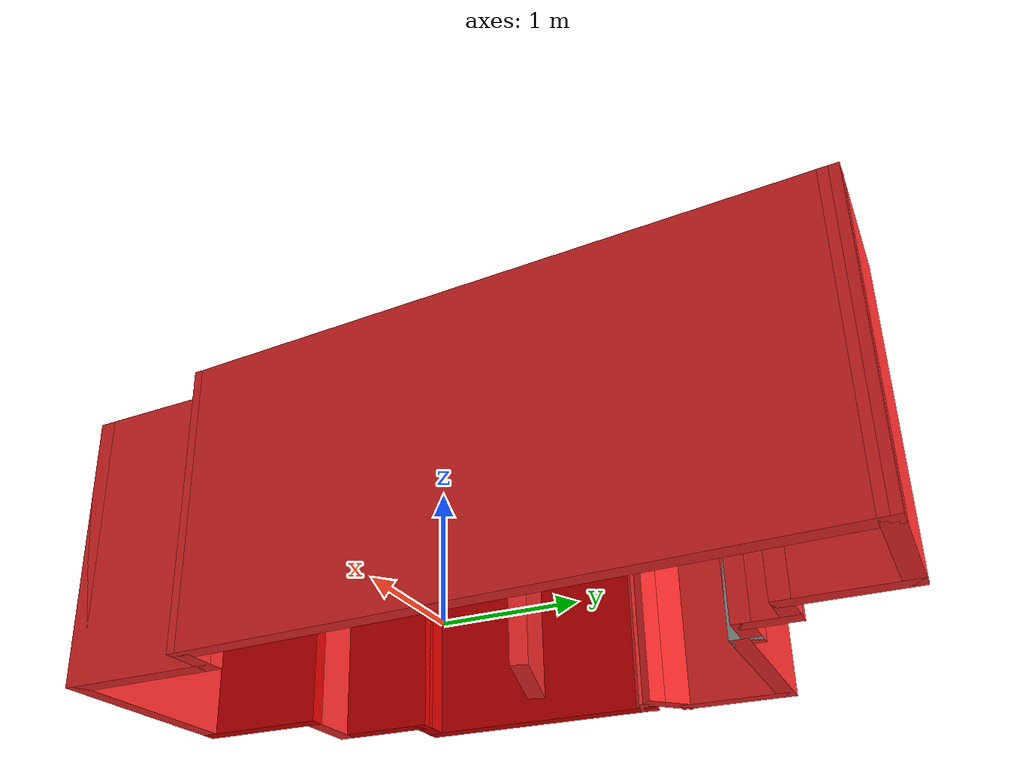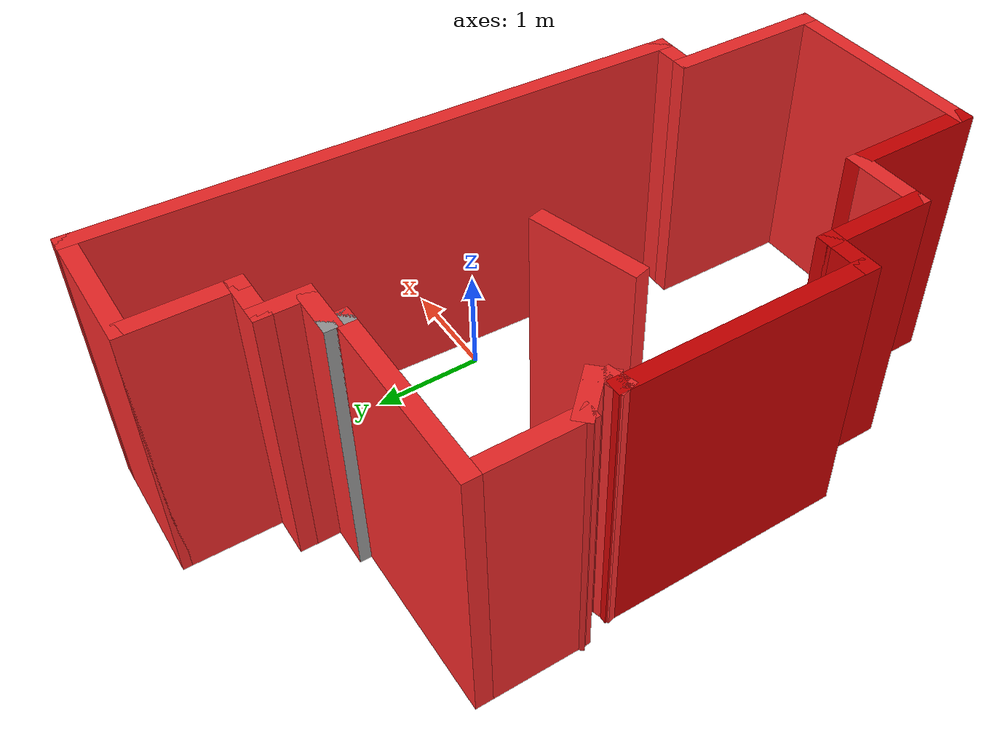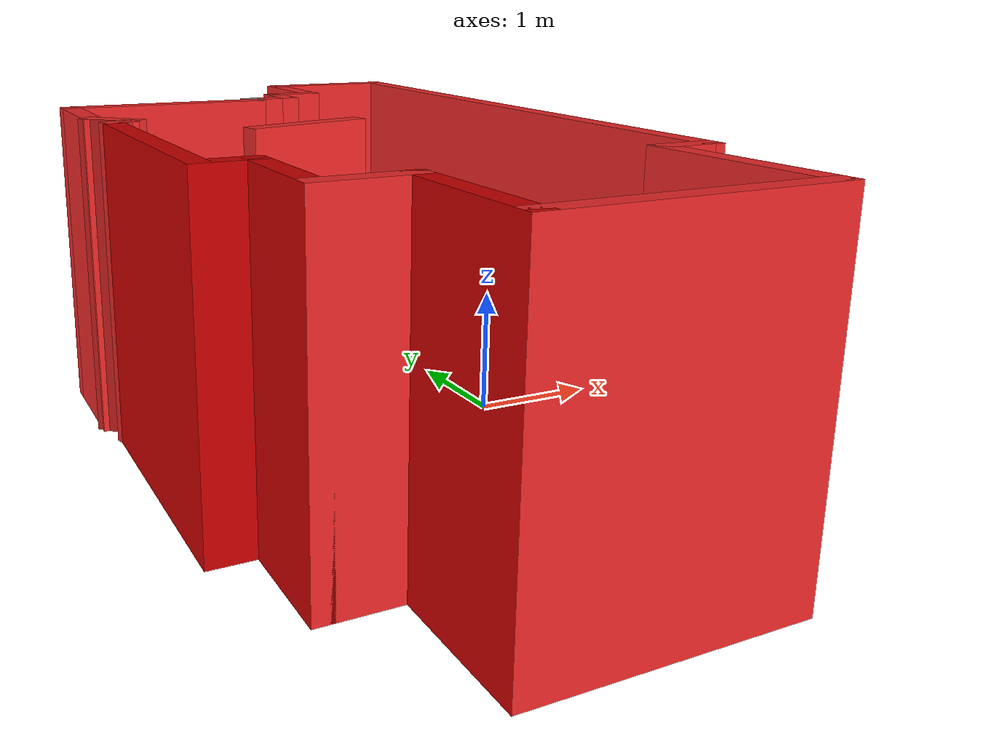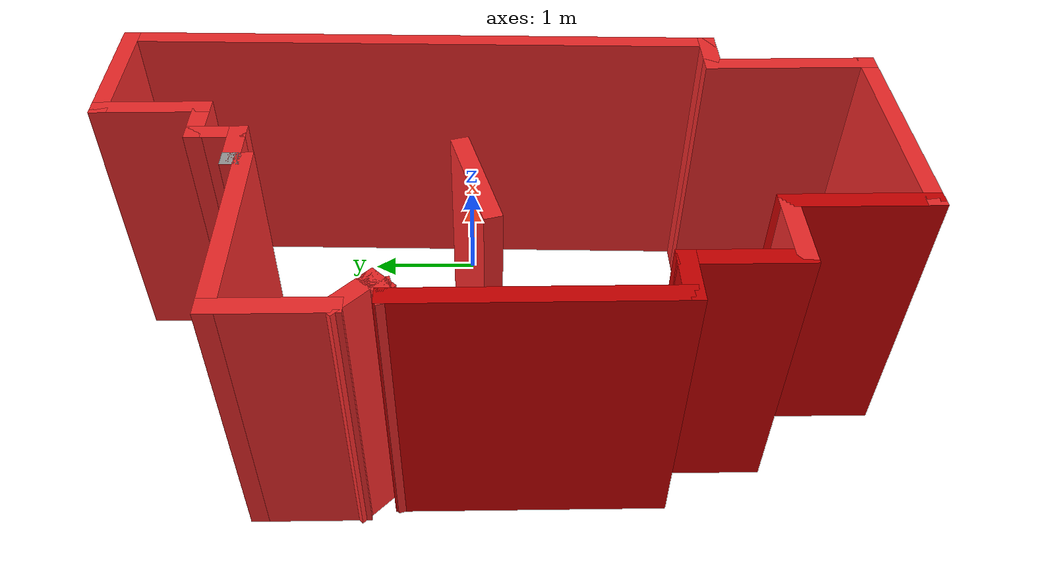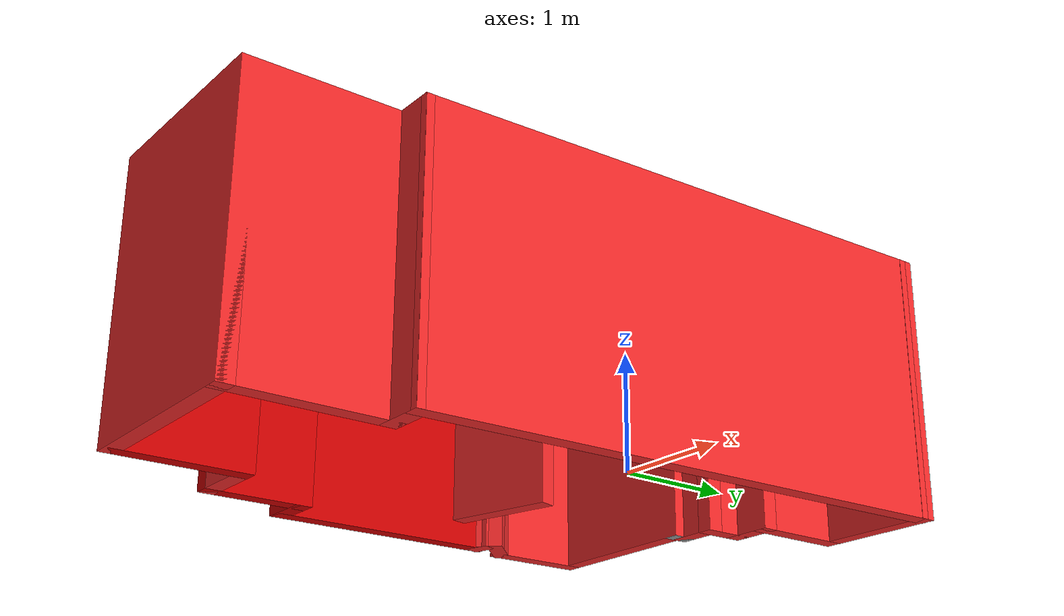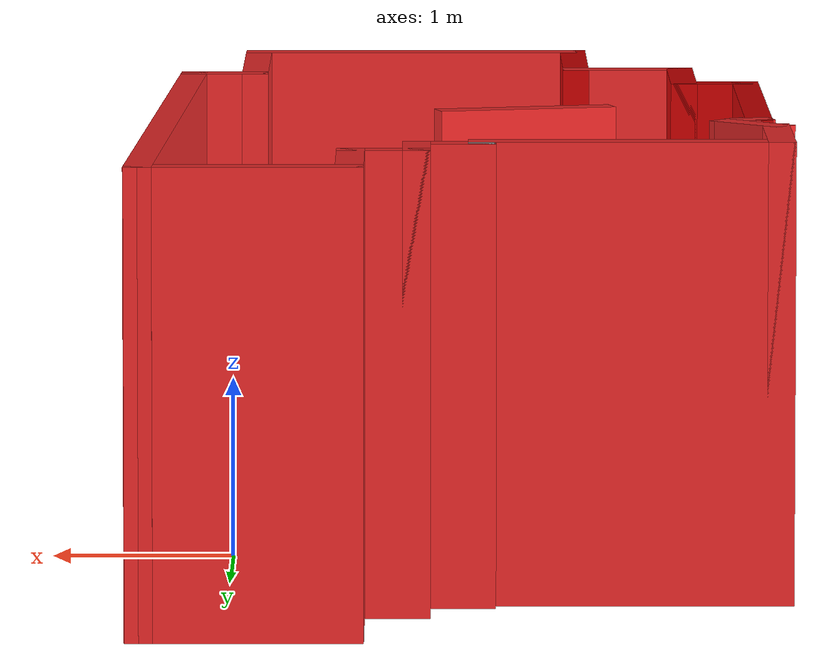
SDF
<?xml version='1.0'?>
<sdf version='1.6'>
  <model name='map_10'>
    <pose frame=''>-1.28107 -0.208551 0 0 -0 0</pose>
    <link name='Wall_10'>
      <collision name='Wall_10_Collision'>
        <geometry>
          <box>
            <size>0.5 0.15 2.5</size>
          </box>
        </geometry>
        <pose frame=''>0 0 1.25 0 -0 0</pose>
      </collision>
      <visual name='Wall_10_Visual'>
        <pose frame=''>0 0 1.25 0 -0 0</pose>
        <geometry>
          <box>
            <size>0.5 0.15 2.5</size>
          </box>
        </geometry>
        <material>
          <script>
            <uri>file://media/materials/scripts/gazebo.material</uri>
            <name>Gazebo/Grey</name>
          </script>
          <ambient>0.937255 0.160784 0.160784 1</ambient>
        </material>
        <meta>
          <layer>0</layer>
        </meta>
      </visual>
      <pose frame=''>-1.56193 0.997091 0 0 -0 -0.785398</pose>
    </link>
    <link name='Wall_11'>
      <collision name='Wall_11_Collision'>
        <geometry>
          <box>
            <size>0.25 0.15 2.5</size>
          </box>
        </geometry>
        <pose frame=''>0 0 1.25 0 -0 0</pose>
      </collision>
      <visual name='Wall_11_Visual'>
        <pose frame=''>0 0 1.25 0 -0 0</pose>
        <geometry>
          <box>
            <size>0.25 0.15 2.5</size>
          </box>
        </geometry>
        <material>
          <script>
            <uri>file://media/materials/scripts/gazebo.material</uri>
            <name>Gazebo/Grey</name>
          </script>
          <ambient>0.937255 0.160784 0.160784 1</ambient>
        </material>
        <meta>
          <layer>0</layer>
        </meta>
      </visual>
      <pose frame=''>-1.47354 0.837992 0 0 -0 -2.35619</pose>
    </link>
    <link name='Wall_12'>
      <collision name='Wall_12_Collision'>
        <geometry>
          <box>
            <size>0.25 0.15 2.5</size>
          </box>
        </geometry>
        <pose frame=''>0 0 1.25 0 -0 0</pose>
      </collision>
      <visual name='Wall_12_Visual'>
        <pose frame=''>0 0 1.25 0 -0 0</pose>
        <geometry>
          <box>
            <size>0.25 0.15 2.5</size>
          </box>
        </geometry>
        <material>
          <script>
            <uri>file://media/materials/scripts/gazebo.material</uri>
            <name>Gazebo/Grey</name>
          </script>
          <ambient>0.937255 0.160784 0.160784 1</ambient>
        </material>
        <meta>
          <layer>0</layer>
        </meta>
      </visual>
      <pose frame=''>-1.55719 0.789695 0 0 -0 -2.87979</pose>
    </link>
    <link name='Wall_13'>
      <collision name='Wall_13_Collision'>
        <geometry>
          <box>
            <size>2.25 0.15 2.5</size>
          </box>
        </geometry>
        <pose frame=''>0 0 1.25 0 -0 0</pose>
      </collision>
      <visual name='Wall_13_Visual'>
        <pose frame=''>0 0 1.25 0 -0 0</pose>
        <geometry>
          <box>
            <size>2.25 0.15 2.5</size>
          </box>
        </geometry>
        <material>
          <script>
            <uri>file://media/materials/scripts/gazebo.material</uri>
            <name>Gazebo/Grey</name>
          </script>
          <ambient>0.8 0 0 1</ambient>
        </material>
        <meta>
          <layer>0</layer>
        </meta>
      </visual>
      <pose frame=''>-1.60549 -0.273245 0 0 -0 -1.5708</pose>
    </link>
    <link name='Wall_14'>
      <collision name='Wall_14_Collision'>
        <geometry>
          <box>
            <size>0.5 0.15 2.5</size>
          </box>
        </geometry>
        <pose frame=''>0 0 1.25 0 -0 0</pose>
      </collision>
      <visual name='Wall_14_Visual'>
        <pose frame=''>0 0 1.25 0 -0 0</pose>
        <geometry>
          <box>
            <size>0.5 0.15 2.5</size>
          </box>
        </geometry>
        <material>
          <script>
            <uri>file://media/materials/scripts/gazebo.material</uri>
            <name>Gazebo/Grey</name>
          </script>
          <ambient>0.8 0 0 1</ambient>
        </material>
        <meta>
          <layer>0</layer>
        </meta>
      </visual>
      <pose frame=''>-1.43049 -1.32325 0 0 -0 0</pose>
    </link>
    <link name='Wall_16'>
      <collision name='Wall_16_Collision'>
        <geometry>
          <box>
            <size>1 0.15 2.5</size>
          </box>
        </geometry>
        <pose frame=''>0 0 1.25 0 -0 0</pose>
      </collision>
      <visual name='Wall_16_Visual'>
        <pose frame=''>0 0 1.25 0 -0 0</pose>
        <geometry>
          <box>
            <size>1 0.15 2.5</size>
          </box>
        </geometry>
        <material>
          <script>
            <uri>file://media/materials/scripts/gazebo.material</uri>
            <name>Gazebo/Grey</name>
          </script>
          <ambient>0.8 0 0 1</ambient>
        </material>
        <meta>
          <layer>0</layer>
        </meta>
      </visual>
      <pose frame=''>-1.25549 -1.74825 0 0 -0 -1.5708</pose>
    </link>
    <link name='Wall_17'>
      <collision name='Wall_17_Collision'>
        <geometry>
          <box>
            <size>0.75 0.15 2.5</size>
          </box>
        </geometry>
        <pose frame=''>0 0 1.25 0 -0 0</pose>
      </collision>
      <visual name='Wall_17_Visual'>
        <pose frame=''>0 0 1.25 0 -0 0</pose>
        <geometry>
          <box>
            <size>0.75 0.15 2.5</size>
          </box>
        </geometry>
        <material>
          <script>
            <uri>file://media/materials/scripts/gazebo.material</uri>
            <name>Gazebo/Grey</name>
          </script>
          <ambient>0.937255 0.160784 0.160784 1</ambient>
        </material>
        <meta>
          <layer>0</layer>
        </meta>
      </visual>
      <pose frame=''>-0.955488 -2.17325 0 0 -0 0</pose>
    </link>
    <link name='Wall_18'>
      <collision name='Wall_18_Collision'>
        <geometry>
          <box>
            <size>1.25 0.15 2.5</size>
          </box>
        </geometry>
        <pose frame=''>0 0 1.25 0 -0 0</pose>
      </collision>
      <visual name='Wall_18_Visual'>
        <pose frame=''>0 0 1.25 0 -0 0</pose>
        <geometry>
          <box>
            <size>1.25 0.15 2.5</size>
          </box>
        </geometry>
        <material>
          <script>
            <uri>file://media/materials/scripts/gazebo.material</uri>
            <name>Gazebo/Grey</name>
          </script>
          <ambient>0.8 0 0 1</ambient>
        </material>
        <meta>
          <layer>0</layer>
        </meta>
      </visual>
      <pose frame=''>-0.655488 -2.72324 0 0 -0 -1.5708</pose>
    </link>
    <link name='Wall_19'>
      <collision name='Wall_19_Collision'>
        <geometry>
          <box>
            <size>2 0.15 2.5</size>
          </box>
        </geometry>
        <pose frame=''>0 0 1.25 0 -0 0</pose>
      </collision>
      <visual name='Wall_19_Visual'>
        <pose frame=''>0 0 1.25 0 -0 0</pose>
        <geometry>
          <box>
            <size>2 0.15 2.5</size>
          </box>
        </geometry>
        <material>
          <script>
            <uri>file://media/materials/scripts/gazebo.material</uri>
            <name>Gazebo/Grey</name>
          </script>
          <ambient>0.937255 0.160784 0.160784 1</ambient>
        </material>
        <meta>
          <layer>0</layer>
        </meta>
      </visual>
      <pose frame=''>0.269512 -3.27325 0 0 -0 0</pose>
    </link>
    <link name='Wall_2'>
      <collision name='Wall_2_Collision'>
        <geometry>
          <box>
            <size>1.25 0.15 2.5</size>
          </box>
        </geometry>
        <pose frame=''>0 0 1.25 0 -0 0</pose>
      </collision>
      <visual name='Wall_2_Visual'>
        <pose frame=''>0 0 1.25 0 -0 0</pose>
        <geometry>
          <box>
            <size>1.25 0.15 2.5</size>
          </box>
        </geometry>
        <material>
          <script>
            <uri>file://media/materials/scripts/gazebo.material</uri>
            <name>Gazebo/Grey</name>
          </script>
          <ambient>0.937255 0.160784 0.160784 1</ambient>
        </material>
        <meta>
          <layer>0</layer>
        </meta>
      </visual>
      <pose frame=''>1.16433 3.27083 0 0 -0 3.14159</pose>
    </link>
    <link name='Wall_20'>
      <collision name='Wall_20_Collision'>
        <geometry>
          <box>
            <size>1.5 0.15 2.5</size>
          </box>
        </geometry>
        <pose frame=''>0 0 1.25 0 -0 0</pose>
      </collision>
      <visual name='Wall_20_Visual'>
        <pose frame=''>0 0 1.25 0 -0 0</pose>
        <geometry>
          <box>
            <size>1.5 0.15 2.5</size>
          </box>
        </geometry>
        <material>
          <script>
            <uri>file://media/materials/scripts/gazebo.material</uri>
            <name>Gazebo/Grey</name>
          </script>
          <ambient>0.937255 0.160784 0.160784 1</ambient>
        </material>
        <meta>
          <layer>0</layer>
        </meta>
      </visual>
      <pose frame=''>1.19451 -2.59824 0 0 -0 1.5708</pose>
    </link>
    <link name='Wall_21'>
      <collision name='Wall_21_Collision'>
        <geometry>
          <box>
            <size>0.5 0.15 2.5</size>
          </box>
        </geometry>
        <pose frame=''>0 0 1.25 0 -0 0</pose>
      </collision>
      <visual name='Wall_21_Visual'>
        <pose frame=''>0 0 1.25 0 -0 0</pose>
        <geometry>
          <box>
            <size>0.5 0.15 2.5</size>
          </box>
        </geometry>
        <material>
          <script>
            <uri>file://media/materials/scripts/gazebo.material</uri>
            <name>Gazebo/Grey</name>
          </script>
          <ambient>0.937255 0.160784 0.160784 1</ambient>
        </material>
        <meta>
          <layer>0</layer>
        </meta>
      </visual>
      <pose frame=''>1.36951 -1.92325 0 0 -0 0</pose>
    </link>
    <link name='Wall_26'>
      <collision name='Wall_26_Collision'>
        <geometry>
          <box>
            <size>5.34685 0.15 2.5</size>
          </box>
        </geometry>
        <pose frame=''>0 0 1.25 0 -0 0</pose>
      </collision>
      <visual name='Wall_26_Visual'>
        <pose frame=''>0 0 1.25 0 -0 0</pose>
        <geometry>
          <box>
            <size>5.34685 0.15 2.5</size>
          </box>
        </geometry>
        <material>
          <script>
            <uri>file://media/materials/scripts/gazebo.material</uri>
            <name>Gazebo/Grey</name>
          </script>
          <ambient>0.937255 0.160784 0.160784 1</ambient>
        </material>
        <meta>
          <layer>0</layer>
        </meta>
      </visual>
      <pose frame=''>1.62942 0.673794 0 0 -0 1.53811</pose>
    </link>
    <link name='Wall_28'>
      <collision name='Wall_28_Collision'>
        <geometry>
          <box>
            <size>1 0.15 2.5</size>
          </box>
        </geometry>
        <pose frame=''>0 0 1.25 0 -0 0</pose>
      </collision>
      <visual name='Wall_28_Visual'>
        <pose frame=''>0 0 1.25 0 -0 0</pose>
        <geometry>
          <box>
            <size>1 0.15 2.5</size>
          </box>
        </geometry>
        <material>
          <script>
            <uri>file://media/materials/scripts/gazebo.material</uri>
            <name>Gazebo/Grey</name>
          </script>
          <ambient>0.937255 0.160784 0.160784 1</ambient>
        </material>
        <meta>
          <layer>0</layer>
        </meta>
      </visual>
      <pose frame=''>-0.336228 0.155767 0 0 -0 0.261799</pose>
    </link>
    <link name='Wall_3'>
      <collision name='Wall_3_Collision'>
        <geometry>
          <box>
            <size>1 0.15 2.5</size>
          </box>
        </geometry>
        <pose frame=''>0 0 1.25 0 -0 0</pose>
      </collision>
      <visual name='Wall_3_Visual'>
        <pose frame=''>0 0 1.25 0 -0 0</pose>
        <geometry>
          <box>
            <size>1 0.15 2.5</size>
          </box>
        </geometry>
        <material>
          <script>
            <uri>file://media/materials/scripts/gazebo.material</uri>
            <name>Gazebo/Grey</name>
          </script>
          <ambient>0.937255 0.160784 0.160784 1</ambient>
        </material>
        <meta>
          <layer>0</layer>
        </meta>
      </visual>
      <pose frame=''>0.614328 2.84583 0 0 -0 -1.5708</pose>
    </link>
    <link name='Wall_4'>
      <collision name='Wall_4_Collision'>
        <geometry>
          <box>
            <size>0.5 0.15 2.5</size>
          </box>
        </geometry>
        <pose frame=''>0 0 1.25 0 -0 0</pose>
      </collision>
      <visual name='Wall_4_Visual'>
        <pose frame=''>0 0 1.25 0 -0 0</pose>
        <geometry>
          <box>
            <size>0.5 0.15 2.5</size>
          </box>
        </geometry>
        <material>
          <script>
            <uri>file://media/materials/scripts/gazebo.material</uri>
            <name>Gazebo/Grey</name>
          </script>
          <ambient>0.937255 0.160784 0.160784 1</ambient>
        </material>
        <meta>
          <layer>0</layer>
        </meta>
      </visual>
      <pose frame=''>0.439328 2.42083 0 0 -0 3.14159</pose>
    </link>
    <link name='Wall_5'>
      <collision name='Wall_5_Collision'>
        <geometry>
          <box>
            <size>0.5 0.15 2.5</size>
          </box>
        </geometry>
        <pose frame=''>0 0 1.25 0 -0 0</pose>
      </collision>
      <visual name='Wall_5_Visual'>
        <pose frame=''>0 0 1.25 0 -0 0</pose>
        <geometry>
          <box>
            <size>0.5 0.15 2.5</size>
          </box>
        </geometry>
        <material>
          <script>
            <uri>file://media/materials/scripts/gazebo.material</uri>
            <name>Gazebo/Grey</name>
          </script>
          <ambient>0.937255 0.160784 0.160784 1</ambient>
        </material>
        <meta>
          <layer>0</layer>
        </meta>
      </visual>
      <pose frame=''>0.264328 2.24583 0 0 -0 -1.5708</pose>
    </link>
    <link name='Wall_6'>
      <collision name='Wall_6_Collision'>
        <geometry>
          <box>
            <size>0.5 0.15 2.5</size>
          </box>
        </geometry>
        <pose frame=''>0 0 1.25 0 -0 0</pose>
      </collision>
      <visual name='Wall_6_Visual'>
        <pose frame=''>0 0 1.25 0 -0 0</pose>
        <geometry>
          <box>
            <size>0.5 0.15 2.5</size>
          </box>
        </geometry>
        <material>
          <script>
            <uri>file://media/materials/scripts/gazebo.material</uri>
            <name>Gazebo/Grey</name>
          </script>
          <ambient>0.937255 0.160784 0.160784 1</ambient>
        </material>
        <meta>
          <layer>0</layer>
        </meta>
      </visual>
      <pose frame=''>0.089328 2.07084 0 0 -0 3.14159</pose>
    </link>
    <link name='Wall_7'>
      <collision name='Wall_7_Collision'>
        <geometry>
          <box>
            <size>0.25 0.15 2.5</size>
          </box>
        </geometry>
        <pose frame=''>0 0 1.25 0 -0 0</pose>
      </collision>
      <visual name='Wall_7_Visual'>
        <pose frame=''>0 0 1.25 0 -0 0</pose>
        <geometry>
          <box>
            <size>0.25 0.15 2.5</size>
          </box>
        </geometry>
        <material>
          <script>
            <uri>file://media/materials/scripts/gazebo.material</uri>
            <name>Gazebo/Grey</name>
          </script>
          <ambient>1 1 1 1</ambient>
        </material>
        <meta>
          <layer>0</layer>
        </meta>
      </visual>
      <pose frame=''>-0.085672 2.02083 0 0 -0 -1.5708</pose>
    </link>
    <link name='Wall_8'>
      <collision name='Wall_8_Collision'>
        <geometry>
          <box>
            <size>1.75 0.15 2.5</size>
          </box>
        </geometry>
        <pose frame=''>0 0 1.25 0 -0 0</pose>
      </collision>
      <visual name='Wall_8_Visual'>
        <pose frame=''>0 0 1.25 0 -0 0</pose>
        <geometry>
          <box>
            <size>1.75 0.15 2.5</size>
          </box>
        </geometry>
        <material>
          <script>
            <uri>file://media/materials/scripts/gazebo.material</uri>
            <name>Gazebo/Grey</name>
          </script>
          <ambient>0.937255 0.160784 0.160784 1</ambient>
        </material>
        <meta>
          <layer>0</layer>
        </meta>
      </visual>
      <pose frame=''>-0.885672 1.97083 0 0 -0 3.14159</pose>
    </link>
    <link name='Wall_9'>
      <collision name='Wall_9_Collision'>
        <geometry>
          <box>
            <size>1 0.15 2.5</size>
          </box>
        </geometry>
        <pose frame=''>0 0 1.25 0 -0 0</pose>
      </collision>
      <visual name='Wall_9_Visual'>
        <pose frame=''>0 0 1.25 0 -0 0</pose>
        <geometry>
          <box>
            <size>1 0.15 2.5</size>
          </box>
        </geometry>
        <material>
          <script>
            <uri>file://media/materials/scripts/gazebo.material</uri>
            <name>Gazebo/Grey</name>
          </script>
          <ambient>0.937255 0.160784 0.160784 1</ambient>
        </material>
        <meta>
          <layer>0</layer>
        </meta>
      </visual>
      <pose frame=''>-1.68567 1.54583 0 0 -0 -1.5708</pose>
    </link>
    <static>1</static>
  </model>
</sdf>
